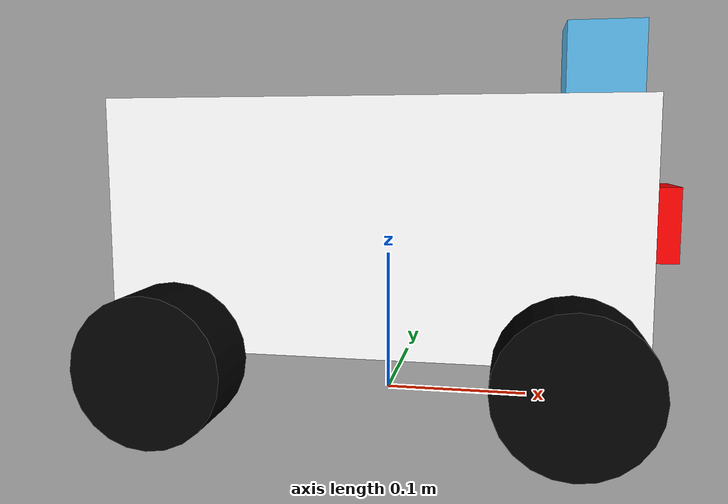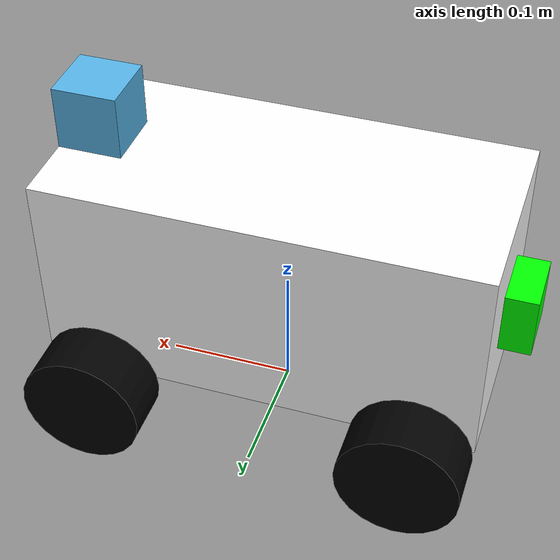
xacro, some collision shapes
<?xml version="1.0"?>
<robot name="square_robot" xmlns:xacro="http://www.ros.org/wiki/xacro">
<!-- 小车自定义参数部分 -->
	<!-- xacro自定义变量参数 -->
    <!-- 轮子 宽0.044m 半径0.047m -->
    <xacro:property name="length_wheel" value="0.044" />
    <xacro:property name="radius_wheel" value="0.047" />
	<!-- 左右轮子与车身中心点(0,0,0)的vx轴距离 0.124m y轴距离 0.11m z轴距离 0.082m-->
	<xacro:property name="FL" value="0.124 0.11 -0.082"/>
    <xacro:property name="FR" value="0.124 -0.11 -0.082"/>
    <xacro:property name="BL" value="-0.124 0.11 -0.082"/>
    <xacro:property name="BR" value="-0.124 -0.11 -0.082"/>
	<!-- 长方体车身  (x方向)长=0.342m (y方向)宽0.16m (z方向)高=0.172-0.08m-->
	<xacro:property name="bodywork" value="0.342 0.16 0.164"/>
    <xacro:property name="PI"           value="3.1415926"/>
    <!-- 定义一个名为 default_inertial 的XACRO宏 接受“mass”这个参数 -->
    <xacro:macro name="default_inertial" params="mass">
        <!-- 物体惯性描述 -->
        <inertial>
            <!-- 接受mass的参数传递 -->
            <mass value="${mass}" />
            <!-- 定义了物体的惯性张量。惯性张量是一个描述物体质量分布对旋转惯性的影响的3x3矩阵
            其中ixx、iyy和izz是物体在x、y和z轴上的转动惯量，而ixy、ixz和iyz是惯性积，这里都设为0，
            表示物体在这些轴上的质量分布是对称的 -->
            <inertia ixx="0.1" ixy="0.0"
                     ixz="0.0"
                     iyy="0.1" iyz="0.0"
                     izz="0.1" />
        </inertial>
    </xacro:macro>
<!-- 小车自定义参数部分 -->

<!-- 小车整体描述 -->
	<!-- 小车整体坐标部分 -->
    <!-- 用于定义机器人的一个刚体链接,这里会把2_car当成父坐标系 -->
    <link name="4_car">
    </link>
	<!-- 小车整体坐标部分 -->
	<!-- 底盘部分 -->
    <link name="base_footprint">
   		<visual>
			<geometry>
      				<box size="0.001 0.001 0.001"/>
     			</geometry>
   		</visual>
		<xacro:default_inertial mass="0.0001"/>
 	</link>
	<!-- 底盘部分 -->
	<!-- 车身部分 -->
	<link name="base_link">
   		<visual>
			<geometry>
      				<box size="${bodywork}"/>
     		</geometry>
			<material name="white">
				<color rgba="1 1 1 1"/>
			</material>
   		</visual>
		<collision>
			<geometry>
       				<box size="${bodywork}"/>
			</geometry>
		</collision>
        <xacro:default_inertial mass="8.2"/>
 	</link>
	<!-- 车身部分 -->
	<!-- 轮子部分 -->
	<xacro:macro name="wheel_" params="num">
 	<link name="wheel_${num}">
   		<visual>
     			<geometry>
					<!-- 轮子宽${length_wheel}，半径${radius_wheel} -->
       				<cylinder length="${length_wheel}" radius="${radius_wheel}"/>
     			</geometry>
   				<material name="black">
					<color rgba="0 0 0 1"/>
				</material>
		</visual>
		<collision>
			<geometry>
       				<cylinder length="${length_wheel}" radius="${radius_wheel}"/>
			</geometry>
		</collision>
		<xacro:default_inertial mass="0.5"/>
 	</link>
	</xacro:macro>
	<xacro:wheel_ num="1" />
	<xacro:wheel_ num="2" />
	<xacro:wheel_ num="3" />
	<xacro:wheel_ num="4" />
	<!-- 轮子部分 -->
    <!-- IMU部分 -->
    <link name="imu_link">
        <collision>
            <geometry>
                <box size="0.05 0.05 0.05"/>
            </geometry>
        </collision>
        <visual>
            <geometry>
                <box size="0.05 0.05 0.05"/>
            </geometry>
            <material name="green">
                <color rgba="0 1 0 1"/>
            </material>
        </visual>
        <inertial>
            <mass value="1e-2" />
                <inertia ixx="1e-6" ixy="0"
                         iyy="1e-6" ixz="0"
                         izz="1e-6" iyz="0"/>
        </inertial>
    </link>
    <!-- IMU部分 -->
    <!-- 摄像头部分 -->
    <link name="camera_link">
        <collision>
            <geometry>
                <box size="0.05 0.05 0.05"/>
            </geometry>
        </collision>
        <visual>
            <geometry>
                <box size="0.05 0.05 0.05"/>
            </geometry>
            <material name="red">
                <color rgba="1 0 0 1"/>
            </material>
        </visual>
        <inertial>
            <mass value="1e-2" />
            <inertia ixx="1e-6" ixy="0"
                     iyy="1e-6" iyz="0"
                     izz="1e-6" ixz="0"/>
        </inertial>
    </link>
    <!-- 摄像头部分 -->
    <!-- 2D激光雷达部分 -->
    <link name="laser_frame">
        <collision>
            <geometry>
                <box size="0.05 0.05 0.05"/>
            </geometry>
        </collision>
        <visual>
            <geometry>
                <mesh filename="package://urdf_test/meshes/hokuyo.dae"/>
            </geometry>
        </visual>
        <inertial>
            <mass value="1e-2" />
            <inertia ixx="1e-6" ixy="0"
                     iyy="1e-6" iyz="0"
                     izz="1e-6" ixz="0"/>
        </inertial>
    </link>
    <!-- 2D激光雷达部分 -->

    <!-- 底盘关节部分 -->
    <!-- 定义了一个名为4_car_joint的固定关节(fixed)
         并把4_car当成base_footprint的父坐标 -->
    <joint name="4_car_joint" type="fixed">
        <parent link = "4_car"/>
        <child  link = "base_footprint"/>
    </joint>
    <!-- 底盘关节部分 -->
    <!-- 车身关节部分 -->
	<joint name="base_footprint_joint" type="fixed">
		<parent link = "base_footprint" />
		<child  link = "base_link" />
		<origin xyz  = "0 0 0.126" />
	</joint>
    <!-- 车身关节部分 -->
	<!-- 轮子关节连接部分 -->
	<xacro:macro name="wheel_joints" params="num position">
		<joint name="base_to_wheel${num}" type="continuous">
			<parent link = "base_link"/>
			<child  link = "wheel_${num}"/>
			<origin rpy  = "${-PI/2} 0 0" xyz="${position}"/>
			<!-- 这定义了关节旋转的轴。xyz="0 0 1"意味着关节是沿着z轴旋转的 -->
			<axis   xyz  = "0 0 1" />
            <limit  effort = "1" velocity="33.504" />
		</joint>
	</xacro:macro>
	<xacro:wheel_joints num="1" position="${FL}" />
	<xacro:wheel_joints num="2" position="${BL}" />
	<xacro:wheel_joints num="3" position="${FR}" />
	<xacro:wheel_joints num="4" position="${BR}" />
	<!-- 轮子关节连接部分 -->
    <!-- IMU关节部分 -->
    <joint name="imu_joint" type="fixed">
        <origin xyz  = "-0.171 0 0" rpy="0 0 0"/>
        <parent link = "base_link"/>
        <child  link = "imu_link"/>
    </joint>
    <!-- IMU关节部分 -->
    <!-- 摄像头关节部分 -->
    <joint name="camera_joint" type="fixed">
        <origin xyz  = "0.171 0 0" rpy="0 0 0"/>
        <parent link = "base_link"/>
        <child  link = "camera_link"/>
    </joint>
    <!-- 摄像头关节部分 -->
    <!-- 2D激光雷达关节部分 -->
    <joint name="hokuyo_joint" type="fixed">
        <origin xyz  = "0.146 0 0.107" rpy="0 0 0"/>
        <parent link = "base_link"/>
        <child  link = "laser_frame"/>
    </joint>
    <!-- 2D激光雷达关节部分 -->
<!-- 小车整体描述 -->

<!-- GAZEBO相关插件 -->
    <!-- 底盘部分 -->
    <!-- 把base_footprint关联到gazebo中 -->
    <gazebo reference = "base_footprint">
        <!-- 链接的可视化材质 绿色 -->
        <material>Gazebo/Green</material>
        <!-- 是否关闭该链接上的重力 否-->
        <turnGravityOff>false</turnGravityOff>
    </gazebo>
    <!-- 底盘部分 -->
    <!-- 车身部分 -->
    <gazebo reference = "base_link">
        <material>Gazebo/Orange</material>
    </gazebo>
    <!-- 车身部分 -->
    <!-- 轮子部分 -->
    <gazebo reference = "wheel_1">
        <material>Gazebo/Red</material>
    </gazebo>

    <gazebo reference = "wheel_2">
        <material>Gazebo/Black</material>
    </gazebo>

    <gazebo reference = "wheel_3">
        <material>Gazebo/Red</material>
    </gazebo>

    <gazebo reference = "wheel_4">
        <material>Gazebo/Black</material>
    </gazebo>
    <!-- 轮子部分 -->

    <!-- 摄像头部分 -->
    <gazebo reference="camera_link">
        <material>Gazebo/Red</material>
        <sensor type="camera" name="camera1">
            <update_rate>30.0</update_rate>
            <camera name="head">
                <horizontal_fov>1.3962634</horizontal_fov>

                <image>
                    <width>1920</width>
                    <height>1080</height>
                <format>R8G8B8</format>
                </image>

                <clip>
                    <near>0.02</near>
                    <far>300</far>
                </clip>

                <noise>
                    <type>gaussian</type>
                    <mean>0.0</mean>
                    <stddev>0.007</stddev>
                </noise>
            </camera>

            <plugin name="camera_controller" filename="libgazebo_ros_camera.so">
                <alwaysOn>true</alwaysOn>
                <updateRate>0.0</updateRate>
                <cameraName>/</cameraName>
                <imageTopicName>cam</imageTopicName>
                <cameraInfoTopicName>camera_info</cameraInfoTopicName>
                <frameName>camera_link</frameName>
                <hackBaseline>0.07</hackBaseline>
                <distortionK1>0.0</distortionK1>
                <distortionK2>0.0</distortionK2>
                <distortionK3>0.0</distortionK3>
                <distortionT1>0.0</distortionT1>
                <distortionT2>0.0</distortionT2>
            </plugin>
        </sensor>
    </gazebo>
    <!-- 摄像头部分 -->

    <!-- 2D激光雷达的部分 -->
    <gazebo reference="laser_frame">
        <sensor type="ray" name="head_hokuyo_sensor">
            <!-- GPU -->
            <pose>0 0 0 0 0 0</pose>
            <visualize>false</visualize>
            <update_rate>15</update_rate>

            <ray>
                <scan>
                    <horizontal>
                        <samples>720</samples>
                        <resolution>1</resolution>
                        <min_angle>-3.1415926</min_angle>
                        <max_angle>3.1415926</max_angle>
                    </horizontal>
                </scan>

                <range>
                    <min>0.05</min>
                    <max>30.0</max>
                    <resolution>0.01</resolution>
                </range>

                <noise>
                    <type>gaussian</type>
                    <mean>0.0</mean>
                    <stddev>0.01</stddev>
                </noise>
            </ray>

            <plugin name="gazebo_ros_head_hokuyo_controller" filename="libgazebo_ros_laser.so">
                <topicName>/scan</topicName>
                <frameName>laser_frame</frameName>
            </plugin>
        </sensor>
    </gazebo>
    <!-- 2D激光雷达的部分 -->

    <!-- IMU部分 -->
    <gazebo reference="imu_link">
        <material>Gazebo/Orange</material>
        <gravity>true</gravity>

        <sensor name="imu_sensor" type="imu">
            <always_on>true</always_on>
            <update_rate>100</update_rate>
            <visualize>true</visualize>
            <topic>__default_topic__</topic>

            <plugin filename="libgazebo_ros_imu_sensor.so" name="imu_plugin">
                <topicName>imu</topicName>
                <bodyName>imu_link</bodyName>
                <updateRateHZ>100.0</updateRateHZ>
                <gaussianNoise>0.0</gaussianNoise>
                <xyzOffset>0 0 0</xyzOffset>
                <rpyOffset>0 0 0</rpyOffset>
                <frameName>imu_link</frameName>
            </plugin>
            <pose>0 0 0 0 0 0</pose>
        </sensor>
    </gazebo>
    <!-- IMU部分 -->

    <!-- 小车控制器部分 -->
    <gazebo>
        <plugin name="skid_steer_drive_controller" filename="libgazebo_ros_skid_steer_drive.so">
            <alwaysOn>true</alwaysOn>
            <updateRate>100.0</updateRate>
            <robotNamespace>/</robotNamespace>
            <leftFrontJoint>base_to_wheel1</leftFrontJoint>
            <rightFrontJoint>base_to_wheel3</rightFrontJoint>
            <leftRearJoint>base_to_wheel2</leftRearJoint>
            <rightRearJoint>base_to_wheel4</rightRearJoint>
            <!-- 车轮间距 -->
            <wheelSeparation>0.26</wheelSeparation>
            <!-- 车轮直径 -->
            <wheelDiameter>0.12</wheelDiameter>
            <torque>2</torque>
            <!-- 控制话题 -->
            <commandTopic>cmd_vel</commandTopic>
            <odometryTopic>odom</odometryTopic>
            <odometryFrame>odom</odometryFrame>
            <!-- 机器人根坐标系 -->
            <robotBaseFrame>4_car</robotBaseFrame>
            <broadcastTF>0</broadcastTF>
        </plugin>
    </gazebo>
    <!-- 小车控制器部分 -->
<!-- GAZEBO相关插件 -->
</robot>
